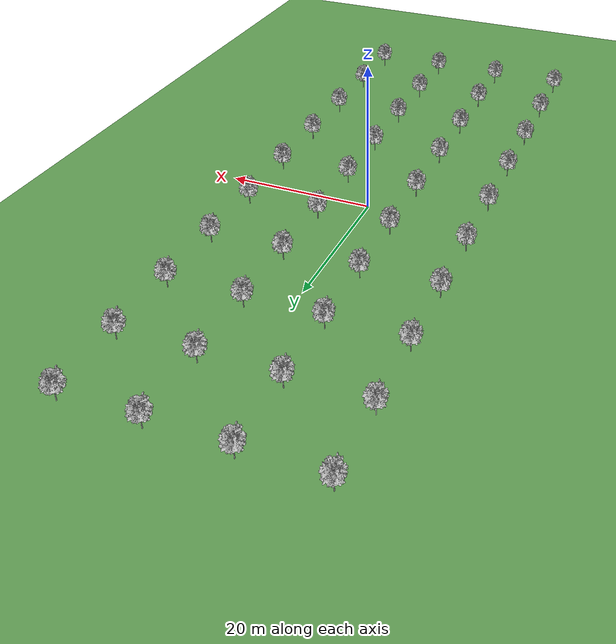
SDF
<?xml version="1.0" encoding="UTF-8"?>
<sdf version="1.9">
  <world name="apple_orchard_100x75_px4_grounded_inline">
    <physics type="ode">
      <max_step_size>0.004</max_step_size>
      <real_time_factor>1.0</real_time_factor>
      <real_time_update_rate>250</real_time_update_rate>
    </physics>
    <gravity>0 0 -9.8</gravity>
    <magnetic_field>6e-06 2.3e-05 -4.2e-05</magnetic_field>
    <atmosphere type="adiabatic"/>
    <scene>
      <grid>false</grid>
      <ambient>0.4 0.4 0.4 1</ambient>
      <background>0.7 0.7 0.7 1</background>
      <shadows>true</shadows>
    </scene>

    <model name="orchard_ground">
      <static>true</static>
      <pose>0 0 0 0 0 0</pose>
      <link name="ground_link">
        <collision name="ground_collision">
          <geometry>
            <plane>
              <normal>0 0 1</normal>
              <size>300 300</size>
            </plane>
          </geometry>
        </collision>
        <visual name="ground_visual">
          <geometry>
            <plane>
              <normal>0 0 1</normal>
              <size>300 300</size>
            </plane>
          </geometry>
          <material>
            <ambient>0.32 0.55 0.28 1</ambient>
            <diffuse>0.38 0.62 0.33 1</diffuse>
            <specular>0.05 0.05 0.05 1</specular>
          </material>
        </visual>
      </link>
    </model>

    <include>
      <uri>model://appletree</uri>
      <name>AppleTree_0</name>
      <pose>-15 -45 0 0 0 0</pose>
    </include>
    <include>
      <uri>model://appletree</uri>
      <name>AppleTree_1</name>
      <pose>-15 -35 0 0 0 0</pose>
    </include>
    <include>
      <uri>model://appletree</uri>
      <name>AppleTree_2</name>
      <pose>-15 -25 0 0 0 0</pose>
    </include>
    <include>
      <uri>model://appletree</uri>
      <name>AppleTree_3</name>
      <pose>-15 -15 0 0 0 0</pose>
    </include>
    <include>
      <uri>model://appletree</uri>
      <name>AppleTree_4</name>
      <pose>-15 -5 0 0 0 0</pose>
    </include>
    <include>
      <uri>model://appletree</uri>
      <name>AppleTree_5</name>
      <pose>-15 5 0 0 0 0</pose>
    </include>
    <include>
      <uri>model://appletree</uri>
      <name>AppleTree_6</name>
      <pose>-15 15 0 0 0 0</pose>
    </include>
    <include>
      <uri>model://appletree</uri>
      <name>AppleTree_7</name>
      <pose>-15 25 0 0 0 0</pose>
    </include>
    <include>
      <uri>model://appletree</uri>
      <name>AppleTree_8</name>
      <pose>-15 35 0 0 0 0</pose>
    </include>
    <include>
      <uri>model://appletree</uri>
      <name>AppleTree_9</name>
      <pose>-15 45 0 0 0 0</pose>
    </include>
    <include>
      <uri>model://appletree</uri>
      <name>AppleTree_10</name>
      <pose>-5 -45 0 0 0 0</pose>
    </include>
    <include>
      <uri>model://appletree</uri>
      <name>AppleTree_11</name>
      <pose>-5 -35 0 0 0 0</pose>
    </include>
    <include>
      <uri>model://appletree</uri>
      <name>AppleTree_12</name>
      <pose>-5 -25 0 0 0 0</pose>
    </include>
    <include>
      <uri>model://appletree</uri>
      <name>AppleTree_13</name>
      <pose>-5 -15 0 0 0 0</pose>
    </include>
    <include>
      <uri>model://appletree</uri>
      <name>AppleTree_14</name>
      <pose>-5 -5 0 0 0 0</pose>
    </include>
    <include>
      <uri>model://appletree</uri>
      <name>AppleTree_15</name>
      <pose>-5 5 0 0 0 0</pose>
    </include>
    <include>
      <uri>model://appletree</uri>
      <name>AppleTree_16</name>
      <pose>-5 15 0 0 0 0</pose>
    </include>
    <include>
      <uri>model://appletree</uri>
      <name>AppleTree_17</name>
      <pose>-5 25 0 0 0 0</pose>
    </include>
    <include>
      <uri>model://appletree</uri>
      <name>AppleTree_18</name>
      <pose>-5 35 0 0 0 0</pose>
    </include>
    <include>
      <uri>model://appletree</uri>
      <name>AppleTree_19</name>
      <pose>-5 45 0 0 0 0</pose>
    </include>
    <include>
      <uri>model://appletree</uri>
      <name>AppleTree_20</name>
      <pose>5 -45 0 0 0 0</pose>
    </include>
    <include>
      <uri>model://appletree</uri>
      <name>AppleTree_21</name>
      <pose>5 -35 0 0 0 0</pose>
    </include>
    <include>
      <uri>model://appletree</uri>
      <name>AppleTree_22</name>
      <pose>5 -25 0 0 0 0</pose>
    </include>
    <include>
      <uri>model://appletree</uri>
      <name>AppleTree_23</name>
      <pose>5 -15 0 0 0 0</pose>
    </include>
    <include>
      <uri>model://appletree</uri>
      <name>AppleTree_24</name>
      <pose>5 -5 0 0 0 0</pose>
    </include>
    <include>
      <uri>model://appletree</uri>
      <name>AppleTree_25</name>
      <pose>5 5 0 0 0 0</pose>
    </include>
    <include>
      <uri>model://appletree</uri>
      <name>AppleTree_26</name>
      <pose>5 15 0 0 0 0</pose>
    </include>
    <include>
      <uri>model://appletree</uri>
      <name>AppleTree_27</name>
      <pose>5 25 0 0 0 0</pose>
    </include>
    <include>
      <uri>model://appletree</uri>
      <name>AppleTree_28</name>
      <pose>5 35 0 0 0 0</pose>
    </include>
    <include>
      <uri>model://appletree</uri>
      <name>AppleTree_29</name>
      <pose>5 45 0 0 0 0</pose>
    </include>
    <include>
      <uri>model://appletree</uri>
      <name>AppleTree_30</name>
      <pose>15 -45 0 0 0 0</pose>
    </include>
    <include>
      <uri>model://appletree</uri>
      <name>AppleTree_31</name>
      <pose>15 -35 0 0 0 0</pose>
    </include>
    <include>
      <uri>model://appletree</uri>
      <name>AppleTree_32</name>
      <pose>15 -25 0 0 0 0</pose>
    </include>
    <include>
      <uri>model://appletree</uri>
      <name>AppleTree_33</name>
      <pose>15 -15 0 0 0 0</pose>
    </include>
    <include>
      <uri>model://appletree</uri>
      <name>AppleTree_34</name>
      <pose>15 -5 0 0 0 0</pose>
    </include>
    <include>
      <uri>model://appletree</uri>
      <name>AppleTree_35</name>
      <pose>15 5 0 0 0 0</pose>
    </include>
    <include>
      <uri>model://appletree</uri>
      <name>AppleTree_36</name>
      <pose>15 15 0 0 0 0</pose>
    </include>
    <include>
      <uri>model://appletree</uri>
      <name>AppleTree_37</name>
      <pose>15 25 0 0 0 0</pose>
    </include>
    <include>
      <uri>model://appletree</uri>
      <name>AppleTree_38</name>
      <pose>15 35 0 0 0 0</pose>
    </include>
    <include>
      <uri>model://appletree</uri>
      <name>AppleTree_39</name>
      <pose>15 45 0 0 0 0</pose>
    </include>

    <light name="sunUTC" type="directional">
      <pose>0 0 500 0 0 0</pose>
      <cast_shadows>true</cast_shadows>
      <intensity>1</intensity>
      <direction>0.001 0.625 -0.78</direction>
      <diffuse>0.904 0.904 0.904 1</diffuse>
      <specular>0.271 0.271 0.271 1</specular>
      <attenuation>
        <range>2000</range>
        <linear>0</linear>
        <constant>1</constant>
        <quadratic>0</quadratic>
      </attenuation>
      <spot>
        <inner_angle>0</inner_angle>
        <outer_angle>0</outer_angle>
        <falloff>0</falloff>
      </spot>
    </light>
    <spherical_coordinates>
      <surface_model>EARTH_WGS84</surface_model>
      <world_frame_orientation>ENU</world_frame_orientation>
      <latitude_deg>59.368777357683165</latitude_deg>
      <longitude_deg>10.445698036100689</longitude_deg>
      <elevation>0</elevation>
    </spherical_coordinates>
  </world>
</sdf>

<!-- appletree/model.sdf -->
<sdf version="1.9">
  <model name="appletree">
    <static>true</static>
    <link name="link">

      <!-- Use the exact same mesh for collisions! -->
      <collision name="collision">
        <!-- Exact same pose as the visual -->
        <pose>0 0 0 0 0 0</pose>
        <geometry>
          <mesh>
            <uri>model://appletree/meshes/appletree.obj</uri>
            <scale>8 8 8</scale>
          </mesh>
        </geometry>
      </collision>

      <!-- The visual mesh -->
      <visual name="visual">
        <pose>0 0 0 0 0 0</pose>
        <geometry>
          <mesh>
            <uri>model://appletree/meshes/appletree.obj</uri>
            <scale>8 8 8</scale>
          </mesh>
        </geometry>
      </visual>

    </link>
  </model>
</sdf>
